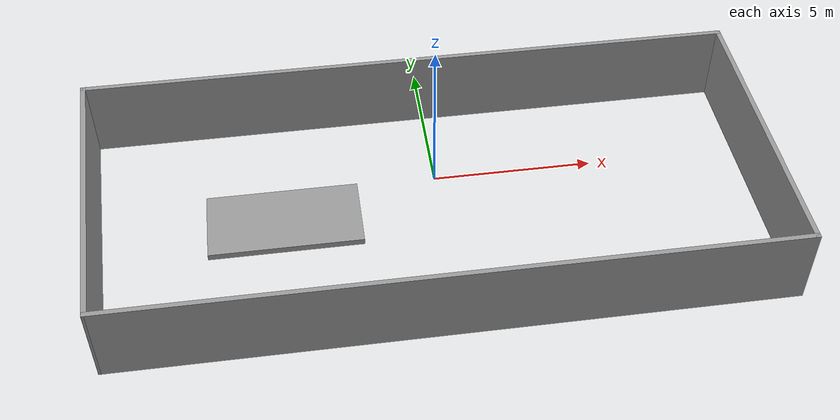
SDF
<?xml version='1.0'?>
<sdf version='1.7'>
  <model name='test'>
    <pose>-0.423416 -1.61194 0 0 -0 0</pose>
    <link name='Stairs_3'>
      <visual name='Stairs_3_Visual_0'>
        <pose>-4.37416 0.347168 0.1 0 -0 0</pose>
        <geometry>
          <box>
            <size>4.67 2.38 0.2</size>
          </box>
        </geometry>
        <material>
          <script>
            <uri>file://media/materials/scripts/gazebo.material</uri>
            <name>Gazebo/Grey</name>
          </script>
          <ambient>1 1 1 1</ambient>
        </material>
        <meta>
          <layer>0</layer>
        </meta>
      </visual>
      <collision name='Stairs_3_Collision_0'>
        <geometry>
          <box>
            <size>4.67 2.38 0.2</size>
          </box>
        </geometry>
        <pose>-4.37416 0.347168 0.1 0 -0 0</pose>
      </collision>
    </link>
    <link name='Wall_6'>
      <collision name='Wall_6_Collision'>
        <geometry>
          <box>
            <size>20.5 0.15 2.5</size>
          </box>
        </geometry>
        <pose>0 0 1.25 0 -0 0</pose>
      </collision>
      <visual name='Wall_6_Visual'>
        <pose>0 0 1.25 0 -0 0</pose>
        <geometry>
          <box>
            <size>20.5 0.15 2.5</size>
          </box>
        </geometry>
        <material>
          <script>
            <uri>file://media/materials/scripts/gazebo.material</uri>
            <name>Gazebo/Grey</name>
          </script>
          <ambient>1 1 1 1</ambient>
        </material>
        <meta>
          <layer>0</layer>
        </meta>
      </visual>
      <pose>0.002001 4.55 0 0 -0 0</pose>
    </link>
    <link name='Wall_7'>
      <collision name='Wall_7_Collision'>
        <geometry>
          <box>
            <size>9.25 0.15 2.5</size>
          </box>
        </geometry>
        <pose>0 0 1.25 0 -0 0</pose>
      </collision>
      <visual name='Wall_7_Visual'>
        <pose>0 0 1.25 0 -0 0</pose>
        <geometry>
          <box>
            <size>9.25 0.15 2.5</size>
          </box>
        </geometry>
        <material>
          <script>
            <uri>file://media/materials/scripts/gazebo.material</uri>
            <name>Gazebo/Grey</name>
          </script>
          <ambient>1 1 1 1</ambient>
        </material>
        <meta>
          <layer>0</layer>
        </meta>
      </visual>
      <pose>10.177 -0 0 0 -0 -1.5708</pose>
    </link>
    <link name='Wall_8'>
      <collision name='Wall_8_Collision'>
        <geometry>
          <box>
            <size>20 0.15 2.5</size>
          </box>
        </geometry>
        <pose>0 0 1.25 0 -0 0</pose>
      </collision>
      <visual name='Wall_8_Visual'>
        <pose>0 0 1.25 0 -0 0</pose>
        <geometry>
          <box>
            <size>20 0.15 2.5</size>
          </box>
        </geometry>
        <material>
          <script>
            <uri>file://media/materials/scripts/gazebo.material</uri>
            <name>Gazebo/Grey</name>
          </script>
          <ambient>1 1 1 1</ambient>
        </material>
        <meta>
          <layer>0</layer>
        </meta>
      </visual>
      <pose>0.252001 -4.55 0 0 -0 3.14159</pose>
    </link>
    <link name='Wall_9'>
      <collision name='Wall_9_Collision'>
        <geometry>
          <box>
            <size>9.26373 0.15 2.5</size>
          </box>
        </geometry>
        <pose>0 0 1.25 0 -0 0</pose>
      </collision>
      <visual name='Wall_9_Visual'>
        <pose>0 0 1.25 0 -0 0</pose>
        <geometry>
          <box>
            <size>9.26373 0.15 2.5</size>
          </box>
        </geometry>
        <material>
          <script>
            <uri>file://media/materials/scripts/gazebo.material</uri>
            <name>Gazebo/Grey</name>
          </script>
          <ambient>1 1 1 1</ambient>
        </material>
        <meta>
          <layer>0</layer>
        </meta>
      </visual>
      <pose>-9.923 -0 0 0 -0 1.62569</pose>
    </link>
    <static>1</static>
  </model>
</sdf>
